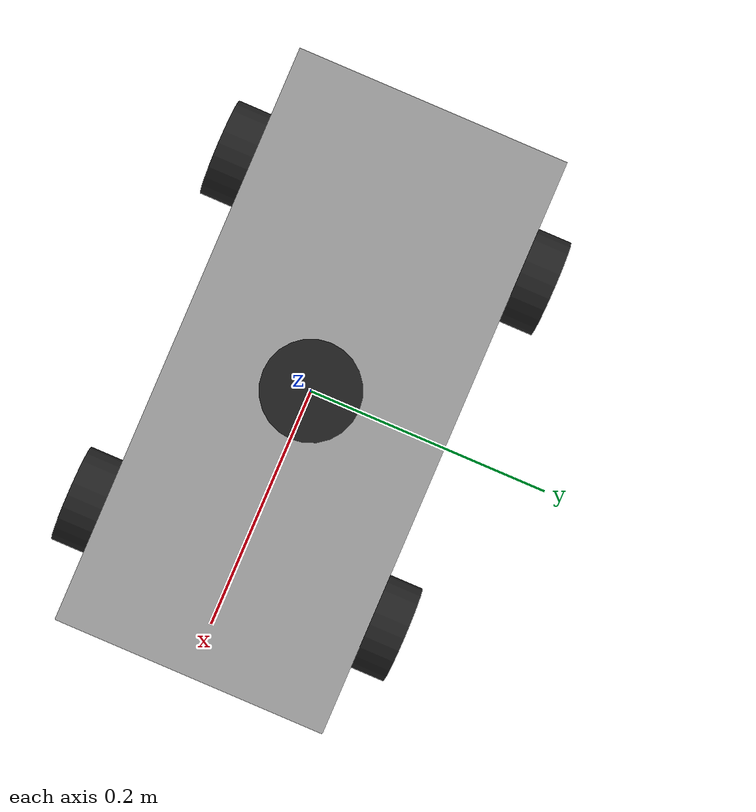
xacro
<?xml version="1.0"?>

<robot name="my_robot" xmlns:xacro="http://www.ros.org/wiki/xacro">

  <xacro:property name="wheel_width" value="0.03" />
  <xacro:property name="wheel_radius" value="0.04" />
  <xacro:property name="wheel_mass" value="0.056" />

  <xacro:property name="wheel_chassis_bias" value="${wheel_width/2}" />

  <xacro:property name="chassis_mass" value="3.7" />
  <xacro:property name="chassis_length" value="0.485" />
  <xacro:property name="chassis_width" value="0.227" />
  <xacro:property name="chassis_height" value="0.05" />

  <xacro:property name="wheelbase" value="0.3" />

  <xacro:property name="lidar_mass" value="0.1" />

  <!-- https://github.com/jbpassot/ackermann_vehicle/blob/master/ackermann_vehicle_description/urdf/em_3905.urdf.xacro -->
  <xacro:property name="degrees_45" value="0.785398163"/>
  <xacro:property name="degrees_90" value="1.57079633"/>

  <!-- ~0.5 rad -->
  <xacro:property name="degrees_30" value="${pi/3}"/>

  <xacro:property name="wheel_turn_limit" value="${degrees_30}"/>

  <xacro:property name="servo_stall_torque" value="100"/>
  <xacro:property name="servo_no_load_speed" value="4.553"/>

  <!-- INERTIAL MACROS -->
  <xacro:macro name="null_inertial">
    <inertial>
      <mass value="0.001"/>
      <inertia ixx="0.001" ixy="0" ixz="0"
               iyy="0.001" iyz="0"
               izz="0.001"/>
    </inertial>
  </xacro:macro>

  <xacro:macro name="solid_cuboid_inertial"
               params="width length height mass *origin">
    <inertial>
      <xacro:insert_block name="origin"/>
      <mass value="${mass}"/>
      <inertia ixx="${mass * (width * width + height * height) / 12}"
               ixy="0" ixz="0"
               iyy="${mass * (length * length + height * height) / 12}"
               iyz="0"
               izz="${mass * (width * width + length * length) / 12}"/>
    </inertial>
  </xacro:macro>

  <xacro:macro name="solid_cylinder_inertial"
               params="r h mass *origin">
    <inertial>
      <xacro:insert_block name="origin"/>
      <mass value="${mass}"/>
      <inertia ixx="${mass / 12 * (3 * r * r + h * h)}" ixy="0.0" ixz="0.0"
               iyy="${mass / 12 * (3 * r * r + h * h)}" iyz="0.0"
               izz="${mass / 2 * r * r}" />
    </inertial>
  </xacro:macro>
  <!-- INERTIAL MACROS END -->

  <xacro:macro name="wheel_object" params="name">
    <link name="${name}">
      <visual>
        <origin xyz="0 0 0" rpy="0 0 0" />
        <geometry>
          <cylinder length="${wheel_width}" radius="${wheel_radius}"/>
        </geometry>
      </visual>
      <collision>
        <origin xyz="0 0 0" rpy="0 0 0" />
        <geometry>
          <cylinder length="${wheel_width}" radius="${wheel_radius}"/>
        </geometry>
      </collision>
      <xacro:solid_cylinder_inertial
          r="${wheel_radius}" h="${wheel_width}"
          mass="${wheel_mass}" >
        <origin xyz="0 0 0" rpy="0 0 0" />
      </xacro:solid_cylinder_inertial>
    </link>
    <gazebo reference="${name}">
      <mu1>1.2</mu1>
      <mu2>1.05</mu2>

      <material>Gazebo/Black</material>
    </gazebo>
  </xacro:macro>

  <xacro:macro name="traveling_wheel" params="name base_name xyz ">
    <xacro:wheel_object name="${name}" />

    <joint name="${name}_rotate_joint" type="continuous">
      <parent link="${base_name}"/>
      <child link="${name}"/>
      <origin xyz="${xyz}" rpy="${pi/2} 0 0"/>
      <axis xyz="0 0 -1"/>
    </joint>

    <transmission name="${name}_rotate_trans">
      <type>transmission_interface/SimpleTransmission</type>
      <joint name="${name}_rotate_joint">
        <hardwareInterface>hardware_interface/VelocityJointInterface</hardwareInterface>
      </joint>
      <actuator name="${name}_rotate_motor">
        <mechanicalReduction>1</mechanicalReduction>
      </actuator>
    </transmission>
  </xacro:macro>

  <xacro:macro name="steering_wheel" params="name base_name xyz ref">
    <link name="${name}_base">
      <xacro:null_inertial/>
    </link>

    <joint name="${name}_steering_joint" type="revolute">
      <limit lower="${-wheel_turn_limit}" upper="${wheel_turn_limit}"
             effort="${servo_stall_torque}" velocity="${servo_no_load_speed}"/>
      <parent link="${base_name}"/>
      <child link="${name}_base"/>
      <origin xyz="${xyz}" rpy="0 0 0"/>
      <axis xyz="0 0 1"/>
    </joint>

    <transmission name="${name}_steer_trans">
      <type>transmission_interface/SimpleTransmission</type>
      <joint name="${name}_steering_joint">
        <hardwareInterface>hardware_interface/PositionJointInterface</hardwareInterface>
      </joint>
      <actuator name="${name}_steering_motor">
        <mechanicalReduction>1</mechanicalReduction>
      </actuator>
    </transmission>

    <xacro:wheel_object name="${name}" />

    <joint name="${name}_rotate_joint" type="continuous">
      <parent link="${name}_base"/>
      <child link="${name}"/>
      <origin xyz="0 0 0" rpy="${pi/2} 0 0"/>
      <axis xyz="0 0 -1"/>
    </joint>

    <transmission name="${name}_rotate_trans">
      <type>transmission_interface/SimpleTransmission</type>
      <joint name="${name}_rotate_joint">
        <hardwareInterface>hardware_interface/VelocityJointInterface</hardwareInterface>
      </joint>
      <actuator name="${name}_rotate_motor">
        <mechanicalReduction>1</mechanicalReduction>
      </actuator>
    </transmission>
  </xacro:macro>
  <link name="base_link">
    <visual>
      <origin xyz="0 0 0" rpy="0 0 0" />
      <geometry>
        <box size="${chassis_length} ${chassis_width} ${chassis_height}"/>
      </geometry>
    </visual>
    <collision>
      <origin xyz="0 0 0" rpy="0 0 0" />
      <geometry>
        <box size="${chassis_length} ${chassis_width} ${chassis_height}"/>
      </geometry>
    </collision>
    <xacro:solid_cuboid_inertial
          length="${chassis_length}" width="${chassis_width}"
          height="${chassis_height}" mass="${chassis_mass}">
      <origin xyz="0 0 0" rpy="0 0 0" />
    </xacro:solid_cuboid_inertial>
  </link>
  <gazebo reference="base_link">
    <material>Gazebo/Grey</material>
  </gazebo>
  <xacro:steering_wheel name="right_steer_wheel" base_name="base_link" xyz="${wheelbase/2} ${-(chassis_width/2 + wheel_chassis_bias)} ${-chassis_height/2}" ref="-1" />
  <xacro:steering_wheel name="left_steer_wheel" base_name="base_link" xyz="${wheelbase/2} ${(chassis_width/2 + wheel_chassis_bias)} ${-chassis_height/2}" ref="1" />

  <xacro:traveling_wheel name="right_travel_wheel" base_name="base_link"
                         xyz="${-wheelbase/2} ${-(chassis_width/2 + wheel_chassis_bias)} ${-chassis_height/2}" />
  <xacro:traveling_wheel name="left_travel_wheel" base_name="base_link"
                         xyz="${-wheelbase/2} ${(chassis_width/2 + wheel_chassis_bias)} ${-chassis_height/2}" />

  <!-- Gazebo plugin for ROS Control -->
  <gazebo>
    <plugin name="gazebo_ros_control" filename="libgazebo_ros_control.so">
    </plugin>
  </gazebo>

  <xacro:property name="lidar_height" value="0.04"/>
  <xacro:property name="lidar_radius" value="0.04"/>

  <link name="hokuyo_link">
    <xacro:solid_cylinder_inertial
        r="${lidar_radius}" h="${lidar_height}"
        mass="${lidar_mass}" >
      <origin xyz="0 0 0" rpy="0 0 0" />
    </xacro:solid_cylinder_inertial>
    <collision>
      <origin xyz="0 0 0" rpy="0 0 0" />
      <geometry>
        <cylinder length="${lidar_height}" radius="${lidar_radius}"/>
      </geometry>
    </collision>
    <visual>
      <origin xyz="0 0 0" rpy="0 0 0" />
      <geometry>
        <cylinder length="${lidar_height}" radius="${lidar_radius}"/>
      </geometry>
    </visual>
  </link>

  <joint name="hokuyo_joint" type="fixed">
    <child link="hokuyo_link" />
    <parent link="base_link" />
    <origin xyz="0 0 ${chassis_height/2 + lidar_height/2}" />
  </joint>

  <gazebo reference="hokuyo_link">
    <material>Gazebo/Black</material>

    <sensor type="gpu_ray" name="head_hokuyo_sensor">
      <visualize>true</visualize>
      <update_rate>10</update_rate>
      <ray>
        <scan>
          <horizontal>
            <samples>360</samples>
            <resolution>1</resolution>
            <min_angle>-1.570796</min_angle>
            <max_angle>1.570796</max_angle>
          </horizontal>
        </scan>
        <range>
          <min>0.10</min>
          <max>10.0</max>
          <resolution>0.01</resolution>
        </range>
        <noise>
          <type>gaussian</type>
          <mean>0.0</mean>
          <stddev>0.01</stddev>
        </noise>
      </ray>
      <plugin name="gazebo_ros_head_hokuyo_controller" filename="libgazebo_ros_gpu_laser.so">
        <topicName>scan</topicName>
        <frameName>hokuyo_link</frameName>
      </plugin>
    </sensor>
  </gazebo>
</robot>
